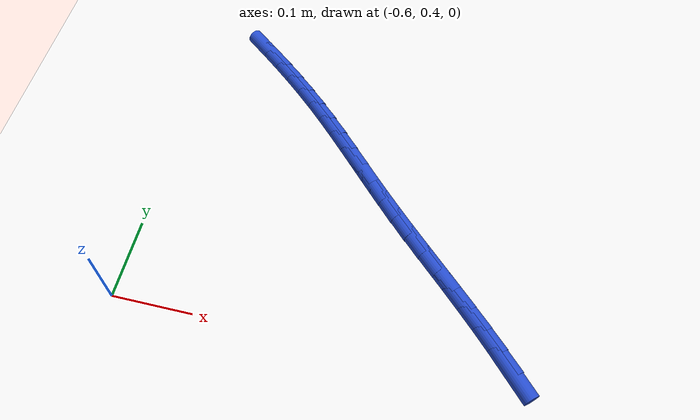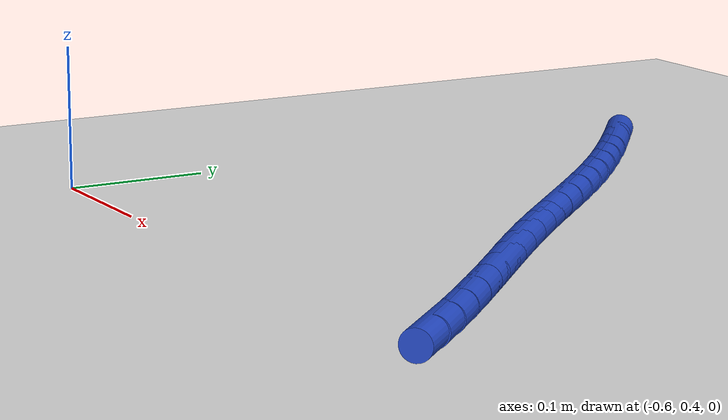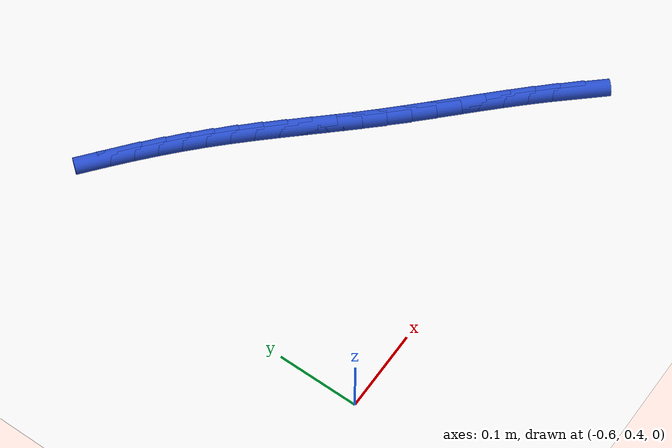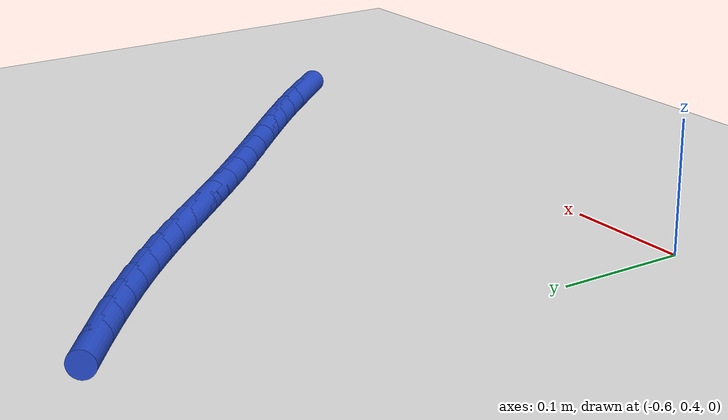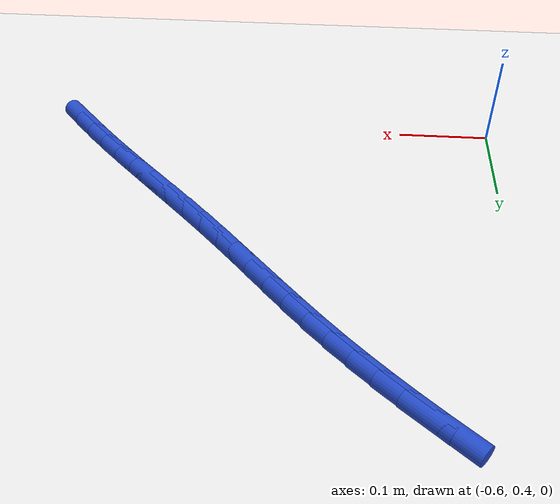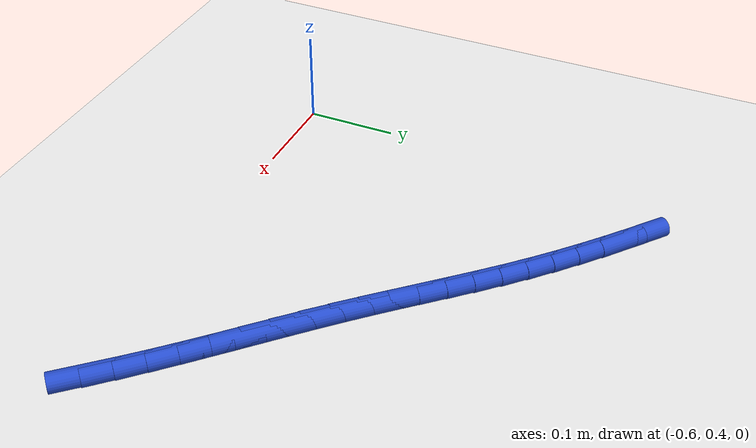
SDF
<sdf version="1.6">
 <world name="default">
  <model name="ground_plane">
   <static>1</static>
   <link name="link">
    <collision name="collision">
     <geometry><plane><normal>0 0 1</normal><size>100 100</size></plane></geometry>
     <surface><friction><ode><mu>100</mu><mu2>50</mu2></ode></friction></surface>
    </collision>
    <visual name="visual">
     <cast_shadows>0</cast_shadows>
     <geometry><plane><normal>0 0 1</normal><size>100 100</size></plane></geometry>
     <material>
      <script><uri>file://media/materials/scripts/gazebo.material</uri><name>Gazebo/WhiteGlow</name></script>
     </material>
    </visual>
   </link>
  </model>
  <model name="line">
   <link name="link_16">
    <pose>-0.13545171333243466 0.41695525586795473 0.01 0 1.57 -0.8414862653843532</pose>
    <collision name="collision">
     <geometry><cylinder><radius>0.01</radius><length>0.08</length></cylinder></geometry>
    </collision>
    <visual name="visual">
     <material>
      <script><name>Gazebo/Blue</name><uri>file://media/materials/scripts/gazebo.material</uri></script>
     </material>
     <geometry><cylinder><radius>0.01</radius><length>0.08</length></cylinder></geometry>
    </visual>
   </link>
   <link name="link_17">
    <pose>-0.15457380005529056 0.4383523740430322 0.01 0 1.57 -0.8184902678183444</pose>
    <collision name="collision">
     <geometry><cylinder><radius>0.01</radius><length>0.08</length></cylinder></geometry>
    </collision>
    <visual name="visual">
     <material>
      <script><name>Gazebo/Blue</name><uri>file://media/materials/scripts/gazebo.material</uri></script>
     </material>
     <geometry><cylinder><radius>0.01</radius><length>0.08</length></cylinder></geometry>
    </visual>
   </link>
   <link name="link_18">
    <pose>-0.17431476846581348 0.4594451091029142 0.01 0 1.57 -0.801228611935672</pose>
    <collision name="collision">
     <geometry><cylinder><radius>0.01</radius><length>0.08</length></cylinder></geometry>
    </collision>
    <visual name="visual">
     <material>
      <script><name>Gazebo/Blue</name><uri>file://media/materials/scripts/gazebo.material</uri></script>
     </material>
     <geometry><cylinder><radius>0.01</radius><length>0.08</length></cylinder></geometry>
    </visual>
   </link>
   <link name="link_19">
    <pose>-0.19452082730557935 0.4803012553730882 0.01 0 1.57 -0.7895237313646777</pose>
    <collision name="collision">
     <geometry><cylinder><radius>0.01</radius><length>0.08</length></cylinder></geometry>
    </collision>
    <visual name="visual">
     <material>
      <script><name>Gazebo/Blue</name><uri>file://media/materials/scripts/gazebo.material</uri></script>
     </material>
     <geometry><cylinder><radius>0.01</radius><length>0.08</length></cylinder></geometry>
    </visual>
   </link>
   <link name="link_20">
    <pose>-0.21503818531616423 0.5009886071790414 0.01 0 1.57 -0.7832529499221703</pose>
    <collision name="collision">
     <geometry><cylinder><radius>0.01</radius><length>0.08</length></cylinder></geometry>
    </collision>
    <visual name="visual">
     <material>
      <script><name>Gazebo/Blue</name><uri>file://media/materials/scripts/gazebo.material</uri></script>
     </material>
     <geometry><cylinder><radius>0.01</radius><length>0.08</length></cylinder></geometry>
    </visual>
   </link>
   <link name="link_21">
    <pose>-0.23571305123914416 0.5215749588462613 0.01 0 1.57 -0.7823559349784218</pose>
    <collision name="collision">
     <geometry><cylinder><radius>0.01</radius><length>0.08</length></cylinder></geometry>
    </collision>
    <visual name="visual">
     <material>
      <script><name>Gazebo/Blue</name><uri>file://media/materials/scripts/gazebo.material</uri></script>
     </material>
     <geometry><cylinder><radius>0.01</radius><length>0.08</length></cylinder></geometry>
    </visual>
   </link>
   <link name="link_22">
    <pose>-0.2563916338160951 0.5421281047002351 0.01 0 1.57 -0.7868386246211607</pose>
    <collision name="collision">
     <geometry><cylinder><radius>0.01</radius><length>0.08</length></cylinder></geometry>
    </collision>
    <visual name="visual">
     <material>
      <script><name>Gazebo/Blue</name><uri>file://media/materials/scripts/gazebo.material</uri></script>
     </material>
     <geometry><cylinder><radius>0.01</radius><length>0.08</length></cylinder></geometry>
    </visual>
   </link>
   <link name="link_23">
    <pose>-0.2769201417885931 0.5627158390664503 0.01 0 1.57 -0.7967743763249812</pose>
    <collision name="collision">
     <geometry><cylinder><radius>0.01</radius><length>0.08</length></cylinder></geometry>
    </collision>
    <visual name="visual">
     <material>
      <script><name>Gazebo/Blue</name><uri>file://media/materials/scripts/gazebo.material</uri></script>
     </material>
     <geometry><cylinder><radius>0.01</radius><length>0.08</length></cylinder></geometry>
    </visual>
   </link>
   <link name="link_24">
    <pose>-0.29714478389821414 0.5834059562703939 0.01 0 1.57 -0.8114350848497028</pose>
    <collision name="collision">
     <geometry><cylinder><radius>0.01</radius><length>0.08</length></cylinder></geometry>
    </collision>
    <visual name="visual">
     <material>
      <script><name>Gazebo/Blue</name><uri>file://media/materials/scripts/gazebo.material</uri></script>
     </material>
     <geometry><cylinder><radius>0.01</radius><length>0.08</length></cylinder></geometry>
    </visual>
   </link>
   <link name="link_25">
    <pose>-0.31693377315655075 0.6042532278141843 0.01 0 1.57 -0.8235750411063438</pose>
    <collision name="collision">
     <geometry><cylinder><radius>0.01</radius><length>0.08</length></cylinder></geometry>
    </collision>
    <visual name="visual">
     <material>
      <script><name>Gazebo/Blue</name><uri>file://media/materials/scripts/gazebo.material</uri></script>
     </material>
     <geometry><cylinder><radius>0.01</radius><length>0.08</length></cylinder></geometry>
    </visual>
   </link>
   <link name="link_26">
    <pose>-0.33634140147859237 0.6252022978160319 0.01 0 1.57 -0.8293948171005181</pose>
    <collision name="collision">
     <geometry><cylinder><radius>0.01</radius><length>0.08</length></cylinder></geometry>
    </collision>
    <visual name="visual">
     <material>
      <script><name>Gazebo/Blue</name><uri>file://media/materials/scripts/gazebo.material</uri></script>
     </material>
     <geometry><cylinder><radius>0.01</radius><length>0.08</length></cylinder></geometry>
    </visual>
   </link>
   <link name="link_27">
    <pose>-0.3555155137251957 0.6461424428000953 0.01 0 1.57 -0.8287426240895144</pose>
    <collision name="collision">
     <geometry><cylinder><radius>0.01</radius><length>0.08</length></cylinder></geometry>
    </collision>
    <visual name="visual">
     <material>
      <script><name>Gazebo/Blue</name><uri>file://media/materials/scripts/gazebo.material</uri></script>
     </material>
     <geometry><cylinder><radius>0.01</radius><length>0.08</length></cylinder></geometry>
    </visual>
   </link>
   <link name="link_28">
    <pose>-0.37460466301634393 0.666962520120366 0.01 0 1.57 -0.8215190716005674</pose>
    <collision name="collision">
     <geometry><cylinder><radius>0.01</radius><length>0.08</length></cylinder></geometry>
    </collision>
    <visual name="visual">
     <material>
      <script><name>Gazebo/Blue</name><uri>file://media/materials/scripts/gazebo.material</uri></script>
     </material>
     <geometry><cylinder><radius>0.01</radius><length>0.08</length></cylinder></geometry>
    </visual>
   </link>
   <link name="link_29">
    <pose>-0.3937574024720208 0.6875513871308371 0.01 0 1.57 -0.8076515008157712</pose>
    <collision name="collision">
     <geometry><cylinder><radius>0.01</radius><length>0.08</length></cylinder></geometry>
    </collision>
    <visual name="visual">
     <material>
      <script><name>Gazebo/Blue</name><uri>file://media/materials/scripts/gazebo.material</uri></script>
     </material>
     <geometry><cylinder><radius>0.01</radius><length>0.08</length></cylinder></geometry>
    </visual>
   </link>
   <link name="link_30">
    <pose>-0.41312228521220945 0.7077979011855001 0.01 0 1.57 -0.7872033452568612</pose>
    <collision name="collision">
     <geometry><cylinder><radius>0.01</radius><length>0.08</length></cylinder></geometry>
    </collision>
    <visual name="visual">
     <material>
      <script><name>Gazebo/Blue</name><uri>file://media/materials/scripts/gazebo.material</uri></script>
     </material>
     <geometry><cylinder><radius>0.01</radius><length>0.08</length></cylinder></geometry>
    </visual>
   </link>
   <link name="link_31">
    <pose>-0.43284591424252017 0.7275928685466158 0.01 0 1.57 -0.7637632232924442</pose>
    <collision name="collision">
     <geometry><cylinder><radius>0.01</radius><length>0.08</length></cylinder></geometry>
    </collision>
    <visual name="visual">
     <material>
      <script><name>Gazebo/Blue</name><uri>file://media/materials/scripts/gazebo.material</uri></script>
     </material>
     <geometry><cylinder><radius>0.01</radius><length>0.08</length></cylinder></geometry>
    </visual>
   </link>
   <link name="link_32">
    <pose>-0.4530044532752253 0.7468974912045723 0.01 0 1.57 -0.7418925420000578</pose>
    <collision name="collision">
     <geometry><cylinder><radius>0.01</radius><length>0.08</length></cylinder></geometry>
    </collision>
    <visual name="visual">
     <material>
      <script><name>Gazebo/Blue</name><uri>file://media/materials/scripts/gazebo.material</uri></script>
     </material>
     <geometry><cylinder><radius>0.01</radius><length>0.08</length></cylinder></geometry>
    </visual>
   </link>
   <link name="link_33">
    <pose>-0.4735855544528302 0.7657614279769895 0.01 0 1.57 -0.7219534350606516</pose>
    <collision name="collision">
     <geometry><cylinder><radius>0.01</radius><length>0.08</length></cylinder></geometry>
    </collision>
    <visual name="visual">
     <material>
      <script><name>Gazebo/Blue</name><uri>file://media/materials/scripts/gazebo.material</uri></script>
     </material>
     <geometry><cylinder><radius>0.01</radius><length>0.08</length></cylinder></geometry>
    </visual>
   </link>
   <link name="link_34">
    <pose>-0.49457124614737213 0.7842399579737747 0.01 0 1.57 -0.704003237530214</pose>
    <collision name="collision">
     <geometry><cylinder><radius>0.01</radius><length>0.08</length></cylinder></geometry>
    </collision>
    <visual name="visual">
     <material>
      <script><name>Gazebo/Blue</name><uri>file://media/materials/scripts/gazebo.material</uri></script>
     </material>
     <geometry><cylinder><radius>0.01</radius><length>0.08</length></cylinder></geometry>
    </visual>
   </link>
   <link name="link_35">
    <pose>-0.5159435567308883 0.8023883603048337 0.01 0 1.57 -0.6880806103003675</pose>
    <collision name="collision">
     <geometry><cylinder><radius>0.01</radius><length>0.08</length></cylinder></geometry>
    </collision>
    <visual name="visual">
     <material>
      <script><name>Gazebo/Blue</name><uri>file://media/materials/scripts/gazebo.material</uri></script>
     </material>
     <geometry><cylinder><radius>0.01</radius><length>0.08</length></cylinder></geometry>
    </visual>
   </link>
  </model>
 </world>
</sdf>
